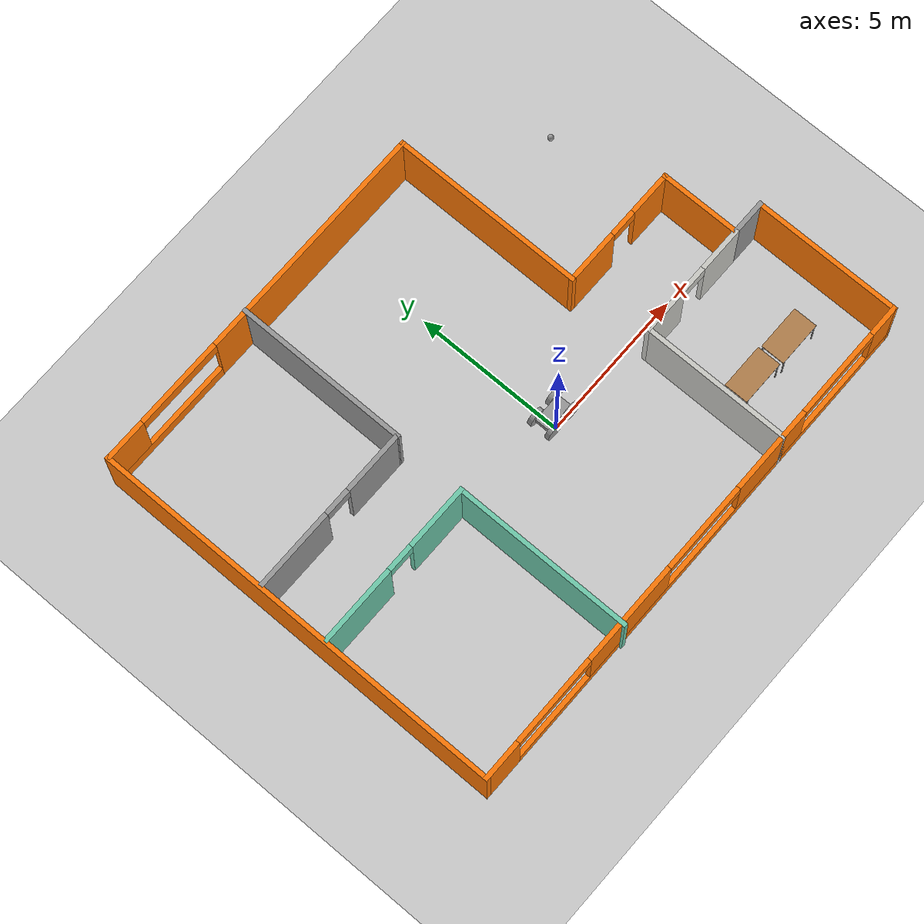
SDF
<sdf version="1.6">
 <world name="default">
  <model name="ground_plane">
   <static>1</static>
   <link name="link">
    <collision name="collision">
     <geometry><plane><normal>0 0 1</normal><size>100 100</size></plane></geometry>
     <surface>
      <contact><collide_bitmask>65535</collide_bitmask></contact>
      <friction><ode><mu>100</mu><mu2>50</mu2></ode></friction>
     </surface>
    </collision>
    <visual name="visual">
     <cast_shadows>0</cast_shadows>
     <geometry><plane><normal>0 0 1</normal><size>100 100</size></plane></geometry>
     <material>
      <script><uri>file://media/materials/scripts/gazebo.material</uri><name>Gazebo/Grey</name></script>
     </material>
    </visual>
   </link>
  </model>
  <model name="MyBuilding_0">
   <pose>-0.535 1.45 0 0 -0 0</pose>
   <link name="Wall_10">
    <collision name="Wall_10_Collision">
     <geometry><box><size>6.5 0.15 2.5</size></box></geometry>
     <pose>0 0 1.25 0 -0 0</pose>
    </collision>
    <visual name="Wall_10_Visual">
     <pose>0 0 1.25 0 -0 0</pose>
     <geometry><box><size>6.5 0.15 2.5</size></box></geometry>
     <material>
      <script><uri>file://media/materials/scripts/gazebo.material</uri><name>Gazebo/Grey</name></script>
      <ambient>0.996078 0.47451 0.0196078 1</ambient>
     </material>
     <meta><layer>0</layer></meta>
    </visual>
    <pose>3.6 3.76 0 0 -0 1.5708</pose>
   </link>
   <link name="Wall_11">
    <pose>-2.575 6.935 0 0 -0 3.14159</pose>
    <visual name="Wall_11_Visual_0">
     <pose>-2.20518 0 1.25 0 -0 0</pose>
     <geometry><box><size>8.08963 0.15 2.5</size></box></geometry>
     <material>
      <script><uri>file://media/materials/scripts/gazebo.material</uri><name>Gazebo/Grey</name></script>
      <ambient>0.996078 0.47451 0.0196078 1</ambient>
     </material>
     <meta><layer>0</layer></meta>
    </visual>
    <collision name="Wall_11_Collision_0">
     <geometry><box><size>8.08963 0.15 2.5</size></box></geometry>
     <pose>-2.20518 0 1.25 0 -0 0</pose>
    </collision>
    <visual name="Wall_11_Visual_1">
     <pose>4.04482 0 0.25 0 -0 0</pose>
     <geometry><box><size>4.41036 0.15 0.5</size></box></geometry>
     <material>
      <script><uri>file://media/materials/scripts/gazebo.material</uri><name>Gazebo/Grey</name></script>
      <ambient>0.996078 0.47451 0.0196078 1</ambient>
     </material>
     <meta><layer>0</layer></meta>
    </visual>
    <collision name="Wall_11_Collision_1">
     <geometry><box><size>4.41036 0.15 0.5</size></box></geometry>
     <pose>4.04482 0 0.25 0 -0 0</pose>
    </collision>
    <visual name="Wall_11_Visual_2">
     <pose>5.54482 0 1.5 0 -0 0</pose>
     <geometry><box><size>1.41037 0.15 2</size></box></geometry>
     <material>
      <script><uri>file://media/materials/scripts/gazebo.material</uri><name>Gazebo/Grey</name></script>
      <ambient>0.996078 0.47451 0.0196078 1</ambient>
     </material>
     <meta><layer>0</layer></meta>
    </visual>
    <collision name="Wall_11_Collision_2">
     <geometry><box><size>1.41037 0.15 2</size></box></geometry>
     <pose>5.54482 0 1.5 0 -0 0</pose>
    </collision>
    <visual name="Wall_11_Visual_3">
     <pose>3.33963 0 2.25 0 -0 0</pose>
     <geometry><box><size>3 0.15 0.5</size></box></geometry>
     <material>
      <script><uri>file://media/materials/scripts/gazebo.material</uri><name>Gazebo/Grey</name></script>
      <ambient>0.996078 0.47451 0.0196078 1</ambient>
     </material>
     <meta><layer>0</layer></meta>
    </visual>
    <collision name="Wall_11_Collision_3">
     <geometry><box><size>3 0.15 0.5</size></box></geometry>
     <pose>3.33963 0 2.25 0 -0 0</pose>
    </collision>
   </link>
   <link name="Wall_14">
    <pose>-5.934 -1.0785 0 0 0 -0.000536</pose>
    <visual name="Wall_14_Visual_0">
     <pose>-1.54624 0 1.25 0 -0 0</pose>
     <geometry><box><size>2.65753 0.15 2.5</size></box></geometry>
     <material>
      <script><uri>file://media/materials/scripts/gazebo.material</uri><name>Gazebo/Grey</name></script>
      <ambient>0.435294 0.796078 0.67451 1</ambient>
     </material>
     <meta><layer>0</layer></meta>
    </visual>
    <collision name="Wall_14_Collision_0">
     <geometry><box><size>2.65753 0.15 2.5</size></box></geometry>
     <pose>-1.54624 0 1.25 0 -0 0</pose>
    </collision>
    <visual name="Wall_14_Visual_1">
     <pose>1.77877 0 1.25 0 -0 0</pose>
     <geometry><box><size>2.19249 0.15 2.5</size></box></geometry>
     <material>
      <script><uri>file://media/materials/scripts/gazebo.material</uri><name>Gazebo/Grey</name></script>
      <ambient>0.435294 0.796078 0.67451 1</ambient>
     </material>
     <meta><layer>0</layer></meta>
    </visual>
    <collision name="Wall_14_Collision_1">
     <geometry><box><size>2.19249 0.15 2.5</size></box></geometry>
     <pose>1.77877 0 1.25 0 -0 0</pose>
    </collision>
    <visual name="Wall_14_Visual_2">
     <pose>0.232523 0 2.25 0 -0 0</pose>
     <geometry><box><size>0.9 0.15 0.5</size></box></geometry>
     <material>
      <script><uri>file://media/materials/scripts/gazebo.material</uri><name>Gazebo/Grey</name></script>
      <ambient>0.435294 0.796078 0.67451 1</ambient>
     </material>
     <meta><layer>0</layer></meta>
    </visual>
    <collision name="Wall_14_Collision_2">
     <geometry><box><size>0.9 0.15 0.5</size></box></geometry>
     <pose>0.232523 0 2.25 0 -0 0</pose>
    </collision>
   </link>
   <link name="Wall_15">
    <collision name="Wall_15_Collision">
     <geometry><box><size>6.02 0.15 2.5</size></box></geometry>
     <pose>0 0 1.25 0 -0 0</pose>
    </collision>
    <visual name="Wall_15_Visual">
     <pose>0 0 1.25 0 -0 0</pose>
     <geometry><box><size>6.02 0.15 2.5</size></box></geometry>
     <material>
      <script><uri>file://media/materials/scripts/gazebo.material</uri><name>Gazebo/Grey</name></script>
      <ambient>0.435294 0.796078 0.67451 1</ambient>
     </material>
     <meta><layer>0</layer></meta>
    </visual>
    <pose>-3.134 -4.015 0 0 0 -1.5708</pose>
   </link>
   <link name="Wall_17">
    <pose>5.775 -2.015 0 0 -0 3.14159</pose>
    <visual name="Wall_17_Visual_0">
     <pose>-1.23223 0 1.25 0 -0 0</pose>
     <geometry><box><size>1.53555 0.15 2.5</size></box></geometry>
     <material>
      <script><uri>file://media/materials/scripts/gazebo.material</uri><name>Gazebo/CeilingTiled</name></script>
      <ambient>1 1 1 1</ambient>
     </material>
     <meta><layer>0</layer></meta>
    </visual>
    <collision name="Wall_17_Collision_0">
     <geometry><box><size>1.53555 0.15 2.5</size></box></geometry>
     <pose>-1.23223 0 1.25 0 -0 0</pose>
    </collision>
    <visual name="Wall_17_Visual_1">
     <pose>1.21777 0 1.25 0 -0 0</pose>
     <geometry><box><size>1.56445 0.15 2.5</size></box></geometry>
     <material>
      <script><uri>file://media/materials/scripts/gazebo.material</uri><name>Gazebo/CeilingTiled</name></script>
      <ambient>1 1 1 1</ambient>
     </material>
     <meta><layer>0</layer></meta>
    </visual>
    <collision name="Wall_17_Collision_1">
     <geometry><box><size>1.56445 0.15 2.5</size></box></geometry>
     <pose>1.21777 0 1.25 0 -0 0</pose>
    </collision>
    <visual name="Wall_17_Visual_2">
     <pose>-0.014453 0 2.25 0 -0 0</pose>
     <geometry><box><size>0.9 0.15 0.5</size></box></geometry>
     <material>
      <script><uri>file://media/materials/scripts/gazebo.material</uri><name>Gazebo/CeilingTiled</name></script>
      <ambient>1 1 1 1</ambient>
     </material>
     <meta><layer>0</layer></meta>
    </visual>
    <collision name="Wall_17_Collision_2">
     <geometry><box><size>0.9 0.15 0.5</size></box></geometry>
     <pose>-0.014453 0 2.25 0 -0 0</pose>
    </collision>
   </link>
   <link name="Wall_18">
    <collision name="Wall_18_Collision">
     <geometry><box><size>5 0.15 2.5</size></box></geometry>
     <pose>0 0 1.25 0 -0 0</pose>
    </collision>
    <visual name="Wall_18_Visual">
     <pose>0 0 1.25 0 -0 0</pose>
     <geometry><box><size>5 0.15 2.5</size></box></geometry>
     <material>
      <script><uri>file://media/materials/scripts/gazebo.material</uri><name>Gazebo/CeilingTiled</name></script>
      <ambient>1 1 1 1</ambient>
     </material>
     <meta><layer>0</layer></meta>
    </visual>
    <pose>3.85 -4.44 0 0 0 -1.5708</pose>
   </link>
   <link name="Wall_2">
    <collision name="Wall_2_Collision">
     <geometry><box><size>13.965 0.15 2.5</size></box></geometry>
     <pose>0 0 1.25 0 -0 0</pose>
    </collision>
    <visual name="Wall_2_Visual">
     <pose>0 0 1.25 0 -0 0</pose>
     <geometry><box><size>13.965 0.15 2.5</size></box></geometry>
     <material>
      <script><uri>file://media/materials/scripts/gazebo.material</uri><name>Gazebo/Grey</name></script>
      <ambient>0.996078 0.47451 0.0196078 1</ambient>
     </material>
     <meta><layer>0</layer></meta>
    </visual>
    <pose>-8.8 0.0425 0 0 0 -1.5708</pose>
   </link>
   <link name="Wall_20">
    <pose>-5.90718 1.29035 0 0 0 -0.000126</pose>
    <visual name="Wall_20_Visual_0">
     <pose>-1.51978 0 1.25 0 -0 0</pose>
     <geometry><box><size>2.71044 0.15 2.5</size></box></geometry>
     <material>
      <script><uri>file://media/materials/scripts/gazebo.material</uri><name>Gazebo/Grey</name></script>
      <ambient>1 1 1 1</ambient>
     </material>
     <meta><layer>0</layer></meta>
    </visual>
    <collision name="Wall_20_Collision_0">
     <geometry><box><size>2.71044 0.15 2.5</size></box></geometry>
     <pose>-1.51978 0 1.25 0 -0 0</pose>
    </collision>
    <visual name="Wall_20_Visual_1">
     <pose>1.80522 0 1.25 0 -0 0</pose>
     <geometry><box><size>2.13956 0.15 2.5</size></box></geometry>
     <material>
      <script><uri>file://media/materials/scripts/gazebo.material</uri><name>Gazebo/Grey</name></script>
      <ambient>1 1 1 1</ambient>
     </material>
     <meta><layer>0</layer></meta>
    </visual>
    <collision name="Wall_20_Collision_1">
     <geometry><box><size>2.13956 0.15 2.5</size></box></geometry>
     <pose>1.80522 0 1.25 0 -0 0</pose>
    </collision>
    <visual name="Wall_20_Visual_2">
     <pose>0.285438 0 2.25 0 -0 0</pose>
     <geometry><box><size>0.9 0.15 0.5</size></box></geometry>
     <material>
      <script><uri>file://media/materials/scripts/gazebo.material</uri><name>Gazebo/Grey</name></script>
      <ambient>1 1 1 1</ambient>
     </material>
     <meta><layer>0</layer></meta>
    </visual>
    <collision name="Wall_20_Collision_2">
     <geometry><box><size>0.9 0.15 0.5</size></box></geometry>
     <pose>0.285438 0 2.25 0 -0 0</pose>
    </collision>
   </link>
   <link name="Wall_21">
    <collision name="Wall_21_Collision">
     <geometry><box><size>5.81 0.15 2.5</size></box></geometry>
     <pose>0 0 1.25 0 -0 0</pose>
    </collision>
    <visual name="Wall_21_Visual">
     <pose>0 0 1.25 0 -0 0</pose>
     <geometry><box><size>5.81 0.15 2.5</size></box></geometry>
     <material>
      <script><uri>file://media/materials/scripts/gazebo.material</uri><name>Gazebo/Grey</name></script>
      <ambient>1 1 1 1</ambient>
     </material>
     <meta><layer>0</layer></meta>
    </visual>
    <pose>-3.107 4.12 0 0 -0 1.5708</pose>
   </link>
   <link name="Wall_3">
    <pose>0 -6.865 0 0 -0 0</pose>
    <visual name="Wall_3_Visual_0">
     <pose>-8.18845 0 1.25 0 -0 0</pose>
     <geometry><box><size>1.37311 0.15 2.5</size></box></geometry>
     <material>
      <script><uri>file://media/materials/scripts/gazebo.material</uri><name>Gazebo/Grey</name></script>
      <ambient>0.996078 0.47451 0.0196078 1</ambient>
     </material>
     <meta><layer>0</layer></meta>
    </visual>
    <collision name="Wall_3_Collision_0">
     <geometry><box><size>1.37311 0.15 2.5</size></box></geometry>
     <pose>-8.18845 0 1.25 0 -0 0</pose>
    </collision>
    <visual name="Wall_3_Visual_1">
     <pose>0.686554 0 0.25 0 -0 0</pose>
     <geometry><box><size>16.3769 0.15 0.5</size></box></geometry>
     <material>
      <script><uri>file://media/materials/scripts/gazebo.material</uri><name>Gazebo/Grey</name></script>
      <ambient>0.996078 0.47451 0.0196078 1</ambient>
     </material>
     <meta><layer>0</layer></meta>
    </visual>
    <collision name="Wall_3_Collision_1">
     <geometry><box><size>16.3769 0.15 0.5</size></box></geometry>
     <pose>0.686554 0 0.25 0 -0 0</pose>
    </collision>
    <visual name="Wall_3_Visual_2">
     <pose>-2.80607 0 1.5 0 -0 0</pose>
     <geometry><box><size>3.39165 0.15 2</size></box></geometry>
     <material>
      <script><uri>file://media/materials/scripts/gazebo.material</uri><name>Gazebo/Grey</name></script>
      <ambient>0.996078 0.47451 0.0196078 1</ambient>
     </material>
     <meta><layer>0</layer></meta>
    </visual>
    <collision name="Wall_3_Collision_2">
     <geometry><box><size>3.39165 0.15 2</size></box></geometry>
     <pose>-2.80607 0 1.5 0 -0 0</pose>
    </collision>
    <visual name="Wall_3_Visual_3">
     <pose>3.34233 0 1.5 0 -0 0</pose>
     <geometry><box><size>2.90515 0.15 2</size></box></geometry>
     <material>
      <script><uri>file://media/materials/scripts/gazebo.material</uri><name>Gazebo/Grey</name></script>
      <ambient>0.996078 0.47451 0.0196078 1</ambient>
     </material>
     <meta><layer>0</layer></meta>
    </visual>
    <collision name="Wall_3_Collision_3">
     <geometry><box><size>2.90515 0.15 2</size></box></geometry>
     <pose>3.34233 0 1.5 0 -0 0</pose>
    </collision>
    <visual name="Wall_3_Visual_4">
     <pose>8.33495 0 1.5 0 -0 0</pose>
     <geometry><box><size>1.0801 0.15 2</size></box></geometry>
     <material>
      <script><uri>file://media/materials/scripts/gazebo.material</uri><name>Gazebo/Grey</name></script>
      <ambient>0.996078 0.47451 0.0196078 1</ambient>
     </material>
     <meta><layer>0</layer></meta>
    </visual>
    <collision name="Wall_3_Collision_4">
     <geometry><box><size>1.0801 0.15 2</size></box></geometry>
     <pose>8.33495 0 1.5 0 -0 0</pose>
    </collision>
    <visual name="Wall_3_Visual_5">
     <pose>-6.00189 0 2.25 0 -0 0</pose>
     <geometry><box><size>3 0.15 0.5</size></box></geometry>
     <material>
      <script><uri>file://media/materials/scripts/gazebo.material</uri><name>Gazebo/Grey</name></script>
      <ambient>0.996078 0.47451 0.0196078 1</ambient>
     </material>
     <meta><layer>0</layer></meta>
    </visual>
    <collision name="Wall_3_Collision_5">
     <geometry><box><size>3 0.15 0.5</size></box></geometry>
     <pose>-6.00189 0 2.25 0 -0 0</pose>
    </collision>
    <visual name="Wall_3_Visual_6">
     <pose>0.389756 0 2.25 0 -0 0</pose>
     <geometry><box><size>3 0.15 0.5</size></box></geometry>
     <material>
      <script><uri>file://media/materials/scripts/gazebo.material</uri><name>Gazebo/Grey</name></script>
      <ambient>0.996078 0.47451 0.0196078 1</ambient>
     </material>
     <meta><layer>0</layer></meta>
    </visual>
    <collision name="Wall_3_Collision_6">
     <geometry><box><size>3 0.15 0.5</size></box></geometry>
     <pose>0.389756 0 2.25 0 -0 0</pose>
    </collision>
    <visual name="Wall_3_Visual_7">
     <pose>6.2949 0 2.25 0 -0 0</pose>
     <geometry><box><size>3 0.15 0.5</size></box></geometry>
     <material>
      <script><uri>file://media/materials/scripts/gazebo.material</uri><name>Gazebo/Grey</name></script>
      <ambient>0.996078 0.47451 0.0196078 1</ambient>
     </material>
     <meta><layer>0</layer></meta>
    </visual>
    <collision name="Wall_3_Collision_7">
     <geometry><box><size>3 0.15 0.5</size></box></geometry>
     <pose>6.2949 0 2.25 0 -0 0</pose>
    </collision>
   </link>
   <link name="Wall_4">
    <collision name="Wall_4_Collision">
     <geometry><box><size>5 0.15 2.5</size></box></geometry>
     <pose>0 0 1.25 0 -0 0</pose>
    </collision>
    <visual name="Wall_4_Visual">
     <pose>0 0 1.25 0 -0 0</pose>
     <geometry><box><size>5 0.15 2.5</size></box></geometry>
     <material>
      <script><uri>file://media/materials/scripts/gazebo.material</uri><name>Gazebo/Grey</name></script>
      <ambient>0.996078 0.47451 0.0196078 1</ambient>
     </material>
     <meta><layer>0</layer></meta>
    </visual>
    <pose>8.8 -4.44 0 0 -0 1.5708</pose>
   </link>
   <link name="Wall_7">
    <collision name="Wall_7_Collision">
     <geometry><box><size>1.25 0.15 2.5</size></box></geometry>
     <pose>0 0 1.25 0 -0 0</pose>
    </collision>
    <visual name="Wall_7_Visual">
     <pose>0 0 1.25 0 -0 0</pose>
     <geometry><box><size>1.25 0.15 2.5</size></box></geometry>
     <material>
      <script><uri>file://media/materials/scripts/gazebo.material</uri><name>Gazebo/Grey</name></script>
      <ambient>1 1 1 1</ambient>
     </material>
     <meta><layer>0</layer></meta>
    </visual>
    <pose>8.25 -2.015 0 0 -0 3.14159</pose>
   </link>
   <link name="Wall_8">
    <collision name="Wall_8_Collision">
     <geometry><box><size>2.75 0.15 2.5</size></box></geometry>
     <pose>0 0 1.25 0 -0 0</pose>
    </collision>
    <visual name="Wall_8_Visual">
     <pose>0 0 1.25 0 -0 0</pose>
     <geometry><box><size>2.75 0.15 2.5</size></box></geometry>
     <material>
      <script><uri>file://media/materials/scripts/gazebo.material</uri><name>Gazebo/Grey</name></script>
      <ambient>0.996078 0.47451 0.0196078 1</ambient>
     </material>
     <meta><layer>0</layer></meta>
    </visual>
    <pose>7.7 -0.715 0 0 -0 1.5708</pose>
   </link>
   <link name="Wall_9">
    <pose>5.65 0.585 0 0 -0 3.14159</pose>
    <visual name="Wall_9_Visual_0">
     <pose>-1.37053 0 1.25 0 -0 0</pose>
     <geometry><box><size>1.50895 0.15 2.5</size></box></geometry>
     <material>
      <script><uri>file://media/materials/scripts/gazebo.material</uri><name>Gazebo/Grey</name></script>
      <ambient>0.996078 0.47451 0.0196078 1</ambient>
     </material>
     <meta><layer>0</layer></meta>
    </visual>
    <collision name="Wall_9_Collision_0">
     <geometry><box><size>1.50895 0.15 2.5</size></box></geometry>
     <pose>-1.37053 0 1.25 0 -0 0</pose>
    </collision>
    <visual name="Wall_9_Visual_1">
     <pose>1.20447 0 1.25 0 -0 0</pose>
     <geometry><box><size>1.84105 0.15 2.5</size></box></geometry>
     <material>
      <script><uri>file://media/materials/scripts/gazebo.material</uri><name>Gazebo/Grey</name></script>
      <ambient>0.996078 0.47451 0.0196078 1</ambient>
     </material>
     <meta><layer>0</layer></meta>
    </visual>
    <collision name="Wall_9_Collision_1">
     <geometry><box><size>1.84105 0.15 2.5</size></box></geometry>
     <pose>1.20447 0 1.25 0 -0 0</pose>
    </collision>
    <visual name="Wall_9_Visual_2">
     <pose>-0.166053 0 2.25 0 -0 0</pose>
     <geometry><box><size>0.9 0.15 0.5</size></box></geometry>
     <material>
      <script><uri>file://media/materials/scripts/gazebo.material</uri><name>Gazebo/Grey</name></script>
      <ambient>0.996078 0.47451 0.0196078 1</ambient>
     </material>
     <meta><layer>0</layer></meta>
    </visual>
    <collision name="Wall_9_Collision_2">
     <geometry><box><size>0.9 0.15 0.5</size></box></geometry>
     <pose>-0.166053 0 2.25 0 -0 0</pose>
    </collision>
   </link>
   <static>1</static>
  </model>
  <model name="table_clone_0_clone_clone">
   <static>1</static>
   <link name="link">
    <collision name="surface">
     <pose>0 0 1 0 -0 0</pose>
     <geometry><box><size>1.5 0.8 0.03</size></box></geometry>
     <surface><friction><ode><mu>0.6</mu><mu2>0.6</mu2></ode></friction></surface>
    </collision>
    <visual name="visual1">
     <pose>0 0 1 0 -0 0</pose>
     <geometry><box><size>1.5 0.8 0.03</size></box></geometry>
     <material>
      <script><uri>file://media/materials/scripts/gazebo.material</uri><name>Gazebo/Wood</name></script>
     </material>
    </visual>
    <collision name="front_left_leg">
     <pose>0.68 0.38 0.5 0 -0 0</pose>
     <geometry><cylinder><radius>0.02</radius><length>1</length></cylinder></geometry>
    </collision>
    <visual name="front_left_leg">
     <pose>0.68 0.38 0.5 0 -0 0</pose>
     <geometry><cylinder><radius>0.02</radius><length>1</length></cylinder></geometry>
     <material>
      <script><uri>file://media/materials/scripts/gazebo.material</uri><name>Gazebo/Grey</name></script>
     </material>
    </visual>
    <collision name="front_right_leg">
     <pose>0.68 -0.38 0.5 0 -0 0</pose>
     <geometry><cylinder><radius>0.02</radius><length>1</length></cylinder></geometry>
    </collision>
    <visual name="front_right_leg">
     <pose>0.68 -0.38 0.5 0 -0 0</pose>
     <geometry><cylinder><radius>0.02</radius><length>1</length></cylinder></geometry>
     <material>
      <script><uri>file://media/materials/scripts/gazebo.material</uri><name>Gazebo/Grey</name></script>
     </material>
    </visual>
    <collision name="back_right_leg">
     <pose>-0.68 -0.38 0.5 0 -0 0</pose>
     <geometry><cylinder><radius>0.02</radius><length>1</length></cylinder></geometry>
    </collision>
    <visual name="back_right_leg">
     <pose>-0.68 -0.38 0.5 0 -0 0</pose>
     <geometry><cylinder><radius>0.02</radius><length>1</length></cylinder></geometry>
     <material>
      <script><uri>file://media/materials/scripts/gazebo.material</uri><name>Gazebo/Grey</name></script>
     </material>
    </visual>
    <collision name="back_left_leg">
     <pose>-0.68 0.38 0.5 0 -0 0</pose>
     <geometry><cylinder><radius>0.02</radius><length>1</length></cylinder></geometry>
    </collision>
    <visual name="back_left_leg">
     <pose>-0.68 0.38 0.5 0 -0 0</pose>
     <geometry><cylinder><radius>0.02</radius><length>1</length></cylinder></geometry>
     <material>
      <script><uri>file://media/materials/scripts/gazebo.material</uri><name>Gazebo/Grey</name></script>
     </material>
    </visual>
   </link>
   <pose>4.61233 -3.40813 0 0 -0 0</pose>
  </model>
  <model name="table_clone_0_clone_clone_clone">
   <static>1</static>
   <link name="link">
    <collision name="surface">
     <pose>0 0 1 0 -0 0</pose>
     <geometry><box><size>1.5 0.8 0.03</size></box></geometry>
     <surface><friction><ode><mu>0.6</mu><mu2>0.6</mu2></ode></friction></surface>
    </collision>
    <visual name="visual1">
     <pose>0 0 1 0 -0 0</pose>
     <geometry><box><size>1.5 0.8 0.03</size></box></geometry>
     <material>
      <script><uri>file://media/materials/scripts/gazebo.material</uri><name>Gazebo/Wood</name></script>
     </material>
    </visual>
    <collision name="front_left_leg">
     <pose>0.68 0.38 0.5 0 -0 0</pose>
     <geometry><cylinder><radius>0.02</radius><length>1</length></cylinder></geometry>
    </collision>
    <visual name="front_left_leg">
     <pose>0.68 0.38 0.5 0 -0 0</pose>
     <geometry><cylinder><radius>0.02</radius><length>1</length></cylinder></geometry>
     <material>
      <script><uri>file://media/materials/scripts/gazebo.material</uri><name>Gazebo/Grey</name></script>
     </material>
    </visual>
    <collision name="front_right_leg">
     <pose>0.68 -0.38 0.5 0 -0 0</pose>
     <geometry><cylinder><radius>0.02</radius><length>1</length></cylinder></geometry>
    </collision>
    <visual name="front_right_leg">
     <pose>0.68 -0.38 0.5 0 -0 0</pose>
     <geometry><cylinder><radius>0.02</radius><length>1</length></cylinder></geometry>
     <material>
      <script><uri>file://media/materials/scripts/gazebo.material</uri><name>Gazebo/Grey</name></script>
     </material>
    </visual>
    <collision name="back_right_leg">
     <pose>-0.68 -0.38 0.5 0 -0 0</pose>
     <geometry><cylinder><radius>0.02</radius><length>1</length></cylinder></geometry>
    </collision>
    <visual name="back_right_leg">
     <pose>-0.68 -0.38 0.5 0 -0 0</pose>
     <geometry><cylinder><radius>0.02</radius><length>1</length></cylinder></geometry>
     <material>
      <script><uri>file://media/materials/scripts/gazebo.material</uri><name>Gazebo/Grey</name></script>
     </material>
    </visual>
    <collision name="back_left_leg">
     <pose>-0.68 0.38 0.5 0 -0 0</pose>
     <geometry><cylinder><radius>0.02</radius><length>1</length></cylinder></geometry>
    </collision>
    <visual name="back_left_leg">
     <pose>-0.68 0.38 0.5 0 -0 0</pose>
     <geometry><cylinder><radius>0.02</radius><length>1</length></cylinder></geometry>
     <material>
      <script><uri>file://media/materials/scripts/gazebo.material</uri><name>Gazebo/Grey</name></script>
     </material>
    </visual>
   </link>
   <pose>6.19345 -3.46223 0 0 -0 0</pose>
  </model>
  <model name="white_ball_0">
   <link name="link_0">
    <inertial>
     <mass>1</mass>
     <inertia><ixx>0.1</ixx><ixy>0</ixy><ixz>0</ixz><iyy>0.1</iyy><iyz>0</iyz><izz>0.1</izz></inertia>
    </inertial>
    <visual name="visual">
     <geometry><sphere><radius>0.1</radius></sphere></geometry>
     <material>
      <lighting>1</lighting>
      <script><uri>file://media/materials/scripts/gazebo.material</uri><name>Gazebo/Grey</name></script>
      <shader type="pixel"><normal_map>__default__</normal_map></shader>
      <ambient>1 1 1 1</ambient>
      <diffuse>1 1 1 1</diffuse>
      <specular>1 1 1 1</specular>
      <emissive>1 1 1 1</emissive>
     </material>
    </visual>
    <collision name="collision">
     <geometry><sphere><radius>0.1</radius></sphere></geometry>
     <surface>
      <friction>
       <ode><mu>1</mu><mu2>1</mu2><fdir1>0 0 0</fdir1><slip1>0</slip1><slip2>0</slip2></ode>
       <torsional>
        <coefficient>1</coefficient>
        <patch_radius>0</patch_radius>
        <surface_radius>0</surface_radius>
        <use_patch_radius>1</use_patch_radius>
        <ode><slip>0</slip></ode>
       </torsional>
      </friction>
      <bounce><restitution_coefficient>0</restitution_coefficient><threshold>1e+06</threshold></bounce>
      <contact>
       <collide_without_contact>0</collide_without_contact>
       <collide_without_contact_bitmask>1</collide_without_contact_bitmask>
       <collide_bitmask>1</collide_bitmask>
       <ode>
        <soft_cfm>0</soft_cfm>
        <soft_erp>0.2</soft_erp>
        <kp>1e+13</kp>
        <kd>1</kd>
        <max_vel>0.01</max_vel>
        <min_depth>0</min_depth>
       </ode>
       <bullet>
        <split_impulse>1</split_impulse>
        <split_impulse_penetration_threshold>-0.01</split_impulse_penetration_threshold>
        <soft_cfm>0</soft_cfm>
        <soft_erp>0.2</soft_erp>
        <kp>1e+13</kp>
        <kd>1</kd>
       </bullet>
      </contact>
     </surface>
    </collision>
   </link>
   <static>0</static>
   <pose>6.74174 5.90625 0.1 0 -0 0</pose>
  </model>
  <model name="4WheelRobot_clone">
   <link name="link_0">
    <pose>-1e-06 -1e-06 0 0 -0 0</pose>
    <inertial>
     <mass>1</mass>
     <inertia>
      <ixx>0.166667</ixx>
      <ixy>0</ixy>
      <ixz>0</ixz>
      <iyy>0.166667</iyy>
      <iyz>0</iyz>
      <izz>0.166667</izz>
     </inertia>
    </inertial>
    <visual name="visual">
     <geometry><box><size>1 0.5 0.2</size></box></geometry>
     <material>
      <lighting>1</lighting>
      <script><uri>file://media/materials/scripts/gazebo.material</uri><name>Gazebo/Grey</name></script>
      <shader type="pixel"><normal_map>__default__</normal_map></shader>
      <ambient>0.3 0.3 0.3 1</ambient>
      <diffuse>0.7 0.7 0.7 1</diffuse>
      <specular>0.01 0.01 0.01 1</specular>
      <emissive>0 0 0 1</emissive>
     </material>
    </visual>
    <collision name="collision">
     <geometry><box><size>1 0.5 0.2</size></box></geometry>
     <surface>
      <friction>
       <ode><mu>1</mu><mu2>1</mu2><fdir1>0 0 0</fdir1><slip1>0</slip1><slip2>0</slip2></ode>
       <torsional>
        <coefficient>1</coefficient>
        <patch_radius>0</patch_radius>
        <surface_radius>0</surface_radius>
        <use_patch_radius>1</use_patch_radius>
        <ode><slip>0</slip></ode>
       </torsional>
      </friction>
      <bounce><restitution_coefficient>0</restitution_coefficient><threshold>1e+06</threshold></bounce>
      <contact>
       <collide_without_contact>0</collide_without_contact>
       <collide_without_contact_bitmask>1</collide_without_contact_bitmask>
       <collide_bitmask>1</collide_bitmask>
       <ode>
        <soft_cfm>0</soft_cfm>
        <soft_erp>0.2</soft_erp>
        <kp>1e+13</kp>
        <kd>1</kd>
        <max_vel>0.01</max_vel>
        <min_depth>0</min_depth>
       </ode>
       <bullet>
        <split_impulse>1</split_impulse>
        <split_impulse_penetration_threshold>-0.01</split_impulse_penetration_threshold>
        <soft_cfm>0</soft_cfm>
        <soft_erp>0.2</soft_erp>
        <kp>1e+13</kp>
        <kd>1</kd>
       </bullet>
      </contact>
     </surface>
    </collision>
   </link>
   <link name="link_1">
    <pose>-0.400001 -0.32524 0 1.57 -0 0</pose>
    <inertial>
     <mass>1</mass>
     <inertia><ixx>0.145833</ixx><ixy>0</ixy><ixz>0</ixz><iyy>0.145833</iyy><iyz>0</iyz><izz>0.125</izz></inertia>
    </inertial>
    <visual name="visual">
     <geometry><cylinder><radius>0.3</radius><length>0.15</length></cylinder></geometry>
     <material>
      <lighting>1</lighting>
      <script><uri>file://media/materials/scripts/gazebo.material</uri><name>Gazebo/Grey</name></script>
      <shader type="pixel"><normal_map>__default__</normal_map></shader>
      <ambient>0.3 0.3 0.3 1</ambient>
      <diffuse>0.7 0.7 0.7 1</diffuse>
      <specular>0.01 0.01 0.01 1</specular>
      <emissive>0 0 0 1</emissive>
     </material>
    </visual>
    <collision name="collision">
     <geometry><cylinder><radius>0.3</radius><length>0.15</length></cylinder></geometry>
     <surface>
      <friction>
       <ode><mu>1</mu><mu2>1</mu2><fdir1>0 0 0</fdir1><slip1>0</slip1><slip2>0</slip2></ode>
       <torsional>
        <coefficient>1</coefficient>
        <patch_radius>0</patch_radius>
        <surface_radius>0</surface_radius>
        <use_patch_radius>1</use_patch_radius>
        <ode><slip>0</slip></ode>
       </torsional>
      </friction>
      <bounce><restitution_coefficient>0</restitution_coefficient><threshold>1e+06</threshold></bounce>
      <contact>
       <collide_without_contact>0</collide_without_contact>
       <collide_without_contact_bitmask>1</collide_without_contact_bitmask>
       <collide_bitmask>1</collide_bitmask>
       <ode>
        <soft_cfm>0</soft_cfm>
        <soft_erp>0.2</soft_erp>
        <kp>1e+13</kp>
        <kd>1</kd>
        <max_vel>0.01</max_vel>
        <min_depth>0</min_depth>
       </ode>
       <bullet>
        <split_impulse>1</split_impulse>
        <split_impulse_penetration_threshold>-0.01</split_impulse_penetration_threshold>
        <soft_cfm>0</soft_cfm>
        <soft_erp>0.2</soft_erp>
        <kp>1e+13</kp>
        <kd>1</kd>
       </bullet>
      </contact>
     </surface>
    </collision>
   </link>
   <link name="link_1_clone">
    <pose>0.399999 -0.32524 0 1.57 -0 0</pose>
    <inertial>
     <mass>1</mass>
     <inertia><ixx>0.145833</ixx><ixy>0</ixy><ixz>0</ixz><iyy>0.145833</iyy><iyz>0</iyz><izz>0.125</izz></inertia>
    </inertial>
    <visual name="visual">
     <geometry><cylinder><radius>0.3</radius><length>0.15</length></cylinder></geometry>
     <material>
      <lighting>1</lighting>
      <script><uri>file://media/materials/scripts/gazebo.material</uri><name>Gazebo/Grey</name></script>
      <shader type="pixel"><normal_map>__default__</normal_map></shader>
      <ambient>0.3 0.3 0.3 1</ambient>
      <diffuse>0.7 0.7 0.7 1</diffuse>
      <specular>0.01 0.01 0.01 1</specular>
      <emissive>0 0 0 1</emissive>
     </material>
    </visual>
    <collision name="collision">
     <geometry><cylinder><radius>0.3</radius><length>0.15</length></cylinder></geometry>
     <surface>
      <friction>
       <ode><mu>1</mu><mu2>1</mu2><fdir1>0 0 0</fdir1><slip1>0</slip1><slip2>0</slip2></ode>
       <torsional>
        <coefficient>1</coefficient>
        <patch_radius>0</patch_radius>
        <surface_radius>0</surface_radius>
        <use_patch_radius>1</use_patch_radius>
        <ode><slip>0</slip></ode>
       </torsional>
      </friction>
      <bounce><restitution_coefficient>0</restitution_coefficient><threshold>1e+06</threshold></bounce>
      <contact>
       <collide_without_contact>0</collide_without_contact>
       <collide_without_contact_bitmask>1</collide_without_contact_bitmask>
       <collide_bitmask>1</collide_bitmask>
       <ode>
        <soft_cfm>0</soft_cfm>
        <soft_erp>0.2</soft_erp>
        <kp>1e+13</kp>
        <kd>1</kd>
        <max_vel>0.01</max_vel>
        <min_depth>0</min_depth>
       </ode>
       <bullet>
        <split_impulse>1</split_impulse>
        <split_impulse_penetration_threshold>-0.01</split_impulse_penetration_threshold>
        <soft_cfm>0</soft_cfm>
        <soft_erp>0.2</soft_erp>
        <kp>1e+13</kp>
        <kd>1</kd>
       </bullet>
      </contact>
     </surface>
    </collision>
   </link>
   <link name="link_1_clone_clone">
    <pose>-0.400001 0.325238 0 1.57 -0 0</pose>
    <inertial>
     <mass>1</mass>
     <inertia><ixx>0.145833</ixx><ixy>0</ixy><ixz>0</ixz><iyy>0.145833</iyy><iyz>0</iyz><izz>0.125</izz></inertia>
    </inertial>
    <visual name="visual">
     <geometry><cylinder><radius>0.3</radius><length>0.15</length></cylinder></geometry>
     <material>
      <lighting>1</lighting>
      <script><uri>file://media/materials/scripts/gazebo.material</uri><name>Gazebo/Grey</name></script>
      <shader type="pixel"><normal_map>__default__</normal_map></shader>
      <ambient>0.3 0.3 0.3 1</ambient>
      <diffuse>0.7 0.7 0.7 1</diffuse>
      <specular>0.01 0.01 0.01 1</specular>
      <emissive>0 0 0 1</emissive>
     </material>
    </visual>
    <collision name="collision">
     <geometry><cylinder><radius>0.3</radius><length>0.15</length></cylinder></geometry>
     <surface>
      <friction>
       <ode><mu>1</mu><mu2>1</mu2><fdir1>0 0 0</fdir1><slip1>0</slip1><slip2>0</slip2></ode>
       <torsional>
        <coefficient>1</coefficient>
        <patch_radius>0</patch_radius>
        <surface_radius>0</surface_radius>
        <use_patch_radius>1</use_patch_radius>
        <ode><slip>0</slip></ode>
       </torsional>
      </friction>
      <bounce><restitution_coefficient>0</restitution_coefficient><threshold>1e+06</threshold></bounce>
      <contact>
       <collide_without_contact>0</collide_without_contact>
       <collide_without_contact_bitmask>1</collide_without_contact_bitmask>
       <collide_bitmask>1</collide_bitmask>
       <ode>
        <soft_cfm>0</soft_cfm>
        <soft_erp>0.2</soft_erp>
        <kp>1e+13</kp>
        <kd>1</kd>
        <max_vel>0.01</max_vel>
        <min_depth>0</min_depth>
       </ode>
       <bullet>
        <split_impulse>1</split_impulse>
        <split_impulse_penetration_threshold>-0.01</split_impulse_penetration_threshold>
        <soft_cfm>0</soft_cfm>
        <soft_erp>0.2</soft_erp>
        <kp>1e+13</kp>
        <kd>1</kd>
       </bullet>
      </contact>
     </surface>
    </collision>
   </link>
   <link name="link_1_clone_clone_clone">
    <pose>0.399999 0.325238 0 1.57 -0 0</pose>
    <inertial>
     <mass>1</mass>
     <inertia><ixx>0.145833</ixx><ixy>0</ixy><ixz>0</ixz><iyy>0.145833</iyy><iyz>0</iyz><izz>0.125</izz></inertia>
    </inertial>
    <visual name="visual">
     <geometry><cylinder><radius>0.3</radius><length>0.15</length></cylinder></geometry>
     <material>
      <lighting>1</lighting>
      <script><uri>file://media/materials/scripts/gazebo.material</uri><name>Gazebo/Grey</name></script>
      <shader type="pixel"><normal_map>__default__</normal_map></shader>
      <ambient>0.3 0.3 0.3 1</ambient>
      <diffuse>0.7 0.7 0.7 1</diffuse>
      <specular>0.01 0.01 0.01 1</specular>
      <emissive>0 0 0 1</emissive>
     </material>
    </visual>
    <collision name="collision">
     <geometry><cylinder><radius>0.3</radius><length>0.15</length></cylinder></geometry>
     <surface>
      <friction>
       <ode><mu>1</mu><mu2>1</mu2><fdir1>0 0 0</fdir1><slip1>0</slip1><slip2>0</slip2></ode>
       <torsional>
        <coefficient>1</coefficient>
        <patch_radius>0</patch_radius>
        <surface_radius>0</surface_radius>
        <use_patch_radius>1</use_patch_radius>
        <ode><slip>0</slip></ode>
       </torsional>
      </friction>
      <bounce><restitution_coefficient>0</restitution_coefficient><threshold>1e+06</threshold></bounce>
      <contact>
       <collide_without_contact>0</collide_without_contact>
       <collide_without_contact_bitmask>1</collide_without_contact_bitmask>
       <collide_bitmask>1</collide_bitmask>
       <ode>
        <soft_cfm>0</soft_cfm>
        <soft_erp>0.2</soft_erp>
        <kp>1e+13</kp>
        <kd>1</kd>
        <max_vel>0.01</max_vel>
        <min_depth>0</min_depth>
       </ode>
       <bullet>
        <split_impulse>1</split_impulse>
        <split_impulse_penetration_threshold>-0.01</split_impulse_penetration_threshold>
        <soft_cfm>0</soft_cfm>
        <soft_erp>0.2</soft_erp>
        <kp>1e+13</kp>
        <kd>1</kd>
       </bullet>
      </contact>
     </surface>
    </collision>
   </link>
   <joint name="link_0_JOINT_0" type="revolute">
    <parent>link_0</parent>
    <child>link_1</child>
    <axis>
     <xyz>1 0 0</xyz>
     <use_parent_model_frame>0</use_parent_model_frame>
     <limit>
      <lower>-1.79769e+308</lower>
      <upper>1.79769e+308</upper>
      <effort>-1</effort>
      <velocity>-1</velocity>
     </limit>
     <dynamics>
      <spring_reference>0</spring_reference>
      <spring_stiffness>0</spring_stiffness>
      <damping>0</damping>
     </dynamics>
    </axis>
    <physics>
     <ode><limit><cfm>0</cfm><erp>0.2</erp></limit><suspension><cfm>0</cfm><erp>0.2</erp></suspension></ode>
    </physics>
   </joint>
   <joint name="link_0_JOINT_1" type="revolute">
    <parent>link_0</parent>
    <child>link_1_clone</child>
    <axis>
     <xyz>1 0 0</xyz>
     <use_parent_model_frame>0</use_parent_model_frame>
     <limit>
      <lower>-1.79769e+308</lower>
      <upper>1.79769e+308</upper>
      <effort>-1</effort>
      <velocity>-1</velocity>
     </limit>
     <dynamics>
      <spring_reference>0</spring_reference>
      <spring_stiffness>0</spring_stiffness>
      <damping>0</damping>
     </dynamics>
    </axis>
    <physics>
     <ode><limit><cfm>0</cfm><erp>0.2</erp></limit><suspension><cfm>0</cfm><erp>0.2</erp></suspension></ode>
    </physics>
   </joint>
   <joint name="link_0_JOINT_2" type="revolute">
    <parent>link_0</parent>
    <child>link_1_clone_clone</child>
    <axis>
     <xyz>1 0 0</xyz>
     <use_parent_model_frame>0</use_parent_model_frame>
     <limit>
      <lower>-1.79769e+308</lower>
      <upper>1.79769e+308</upper>
      <effort>-1</effort>
      <velocity>-1</velocity>
     </limit>
     <dynamics>
      <spring_reference>0</spring_reference>
      <spring_stiffness>0</spring_stiffness>
      <damping>0</damping>
     </dynamics>
    </axis>
    <physics>
     <ode><limit><cfm>0</cfm><erp>0.2</erp></limit><suspension><cfm>0</cfm><erp>0.2</erp></suspension></ode>
    </physics>
   </joint>
   <joint name="link_0_JOINT_3" type="revolute">
    <parent>link_0</parent>
    <child>link_1_clone_clone_clone</child>
    <axis>
     <xyz>1 0 0</xyz>
     <use_parent_model_frame>0</use_parent_model_frame>
     <limit>
      <lower>-1.79769e+308</lower>
      <upper>1.79769e+308</upper>
      <effort>-1</effort>
      <velocity>-1</velocity>
     </limit>
     <dynamics>
      <spring_reference>0</spring_reference>
      <spring_stiffness>0</spring_stiffness>
      <damping>0</damping>
     </dynamics>
    </axis>
    <physics>
     <ode><limit><cfm>0</cfm><erp>0.2</erp></limit><suspension><cfm>0</cfm><erp>0.2</erp></suspension></ode>
    </physics>
   </joint>
   <static>0</static>
   <pose>0.227826 0.283115 0.3 0 0 -0.001187</pose>
  </model>
 </world>
</sdf>
